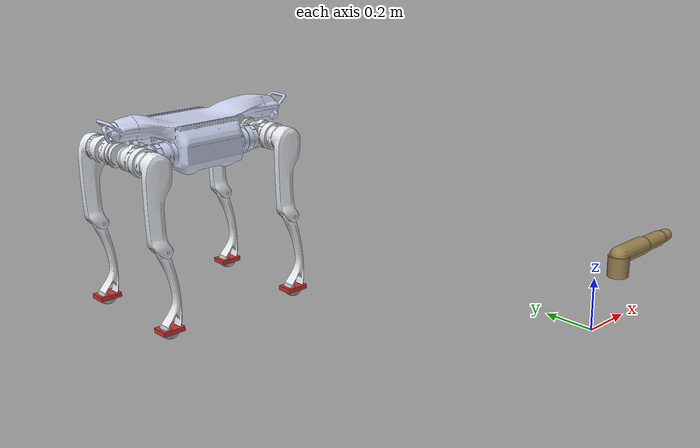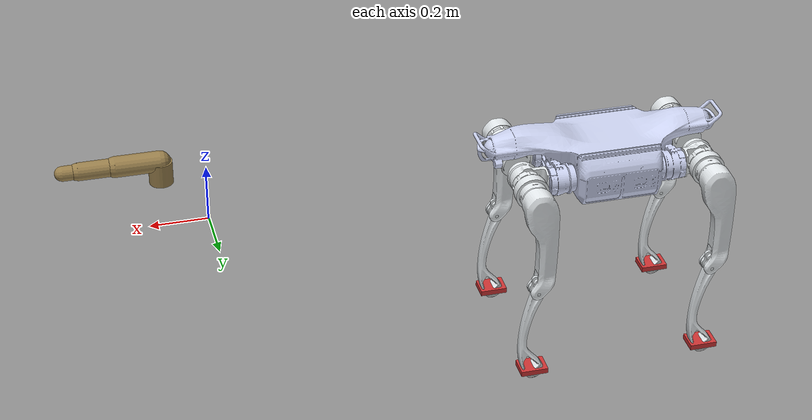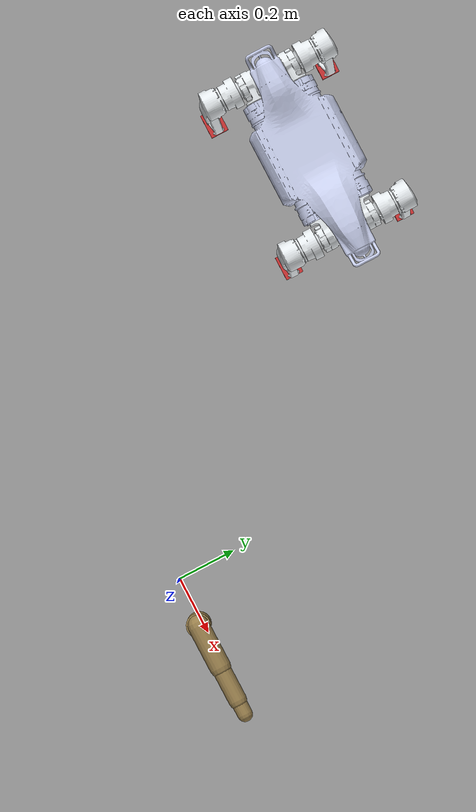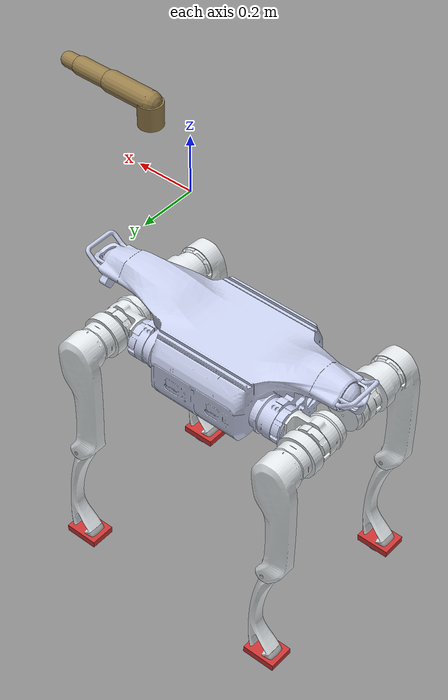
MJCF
<mujoco model="a2_arm">
  <include file="a2.xml"/>

  <!-- 6-DOF robotic arm mounted on base_link body -->
  <worldbody>
    <body name="arm_base" pos="0.15 0 0.12">
      <joint name="arm_base_fixed" type="fixed"/>

      <body name="arm_link1" pos="0 0 0.05">
        <joint name="arm_joint1" type="hinge" axis="0 0 1"
               range="-3.14 3.14" damping="2.0"/>
        <geom name="arm_link1_geom" type="cylinder"
              size="0.04" fromto="0 0 0 0 0 0.08"
              rgba="0.6 0.5 0.3 1"/>

        <body name="arm_link2" pos="0 0 0.08">
          <joint name="arm_joint2" type="hinge" axis="0 1 0"
                 range="-2.0 2.0" damping="2.0"/>
          <geom name="arm_link2_geom" type="capsule"
                size="0.035" fromto="0 0 0 0.15 0 0"
                rgba="0.6 0.5 0.3 1"/>

          <body name="arm_link3" pos="0.15 0 0">
            <joint name="arm_joint3" type="hinge" axis="0 1 0"
                   range="-2.5 2.5" damping="1.5"/>
            <geom name="arm_link3_geom" type="capsule"
                  size="0.03" fromto="0 0 0 0.12 0 0"
                  rgba="0.6 0.5 0.3 1"/>

            <body name="arm_link4" pos="0.12 0 0">
              <joint name="arm_joint4" type="hinge" axis="1 0 0"
                     range="-3.14 3.14" damping="1.0"/>
              <geom name="arm_link4_geom" type="capsule"
                    size="0.025" fromto="0 0 0 0.05 0 0"
                    rgba="0.6 0.5 0.3 1"/>
            </body>
          </body>
        </body>
      </body>
    </body>
  </worldbody>

  <actuator>
    <motor name="arm_joint1_motor" joint="arm_joint1" gear="1"
           ctrllimited="true" ctrlrange="-50 50"/>
    <motor name="arm_joint2_motor" joint="arm_joint2" gear="1"
           ctrllimited="true" ctrlrange="-80 80"/>
    <motor name="arm_joint3_motor" joint="arm_joint3" gear="1"
           ctrllimited="true" ctrlrange="-60 60"/>
    <motor name="arm_joint4_motor" joint="arm_joint4" gear="1"
           ctrllimited="true" ctrlrange="-30 30"/>
  </actuator>
</mujoco>

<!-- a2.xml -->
<mujoco model="a2">
  <compiler angle="radian" meshdir="../assets/a2_urdf/meshes/"/>

  <option gravity="0 0 -9.81" timestep="0.001"
          integrator="implicitfast" solver="Newton"
          iterations="100" tolerance="1e-8"/>

  <default>
    <default class="hip_joint">
      <joint damping="0.2" armature="0.03" frictionloss="1.0" />
    </default>
    <default class="thigh_joint">
      <joint damping="0.2" armature="0.03" frictionloss="1.0" />
    </default>
    <default class="calf_joint">
      <joint damping="1.0" armature="0.03" frictionloss="3.0" />
    </default>
    <default class="collision">
      <geom group="3" priority="1" condim="6"/>
    </default>
    <default class="foot">
      <geom group="3" priority="1" condim="6"/>
    </default>
    <default class="magnet">
      <geom friction="0.5 0.02 0.001"
            contype="1" conaffinity="1"
            rgba="0.8 0.2 0.2 1"/>
    </default>
  </default>

  <asset>
    <mesh name="base_link" file="base_link.STL"/>
    <mesh name="left_front_Link1" file="left_front_Link1.STL"/>
    <mesh name="left_front_Link2" file="left_front_Link2.STL"/>
    <mesh name="left_front_Link3" file="left_front_Link3.STL"/>
    <mesh name="left_front_Link4" file="left_front_Link4.STL"/>
    <mesh name="left_hind_Link1" file="left_hind_Link1.STL"/>
    <mesh name="left_hind_Link2" file="left_hind_Link2.STL"/>
    <mesh name="left_hind_Link3" file="left_hind_Link3.STL"/>
    <mesh name="left_hind_Link4" file="left_hind_Link4.STL"/>
    <mesh name="right_front_Link1" file="right_front_Link1.STL"/>
    <mesh name="right_front_Link2" file="right_front_Link2.STL"/>
    <mesh name="right_front_Link3" file="right_front_Link3.STL"/>
    <mesh name="right_front_Link4" file="right_front_Link4.STL"/>
    <mesh name="right_hind_Link1" file="right_hind_Link1.STL"/>
    <mesh name="right_hind_Link2" file="right_hind_Link2.STL"/>
    <mesh name="right_hind_Link3" file="right_hind_Link3.STL"/>
    <mesh name="right_hind_Link4" file="right_hind_Link4.STL"/>
  </asset>

  <worldbody>
    <body name="base_link" pos="-1 1 0.7">
      <inertial pos="0.00698259 -0.000712858 0.0128895"
                quat="-0.00152907 0.699583 -0.00252986 0.714546"
                mass="19.651" diaginertia="0.472398 0.407723 0.141627"/>
      <freejoint name="floating_base_joint"/>
      <site name="imu" pos="-0.0 0 0.0" />
      <geom type="mesh" contype="0" conaffinity="0" group="1" density="0"
            rgba="0.792157 0.819608 0.933333 1" mesh="base_link"/>
      <geom class="collision" size="0.12 0.14 0.085" pos="0 0 0.007" type="box"
            rgba="0.792157 0.819608 0.933333 1"/>
      <geom class="collision" size="0.04 0.025 0.01" pos="0.25 0 0.119" type="box"
            rgba="0.792157 0.819608 0.933333 1"/>
      <geom class="collision" size="0.025 0.015 0.008" pos="-0.22 0 0.119"
            quat="0.999888 0 -0.0149994 0" type="box"
            rgba="0.792157 0.819608 0.933333 1"/>
      <geom class="collision" size="0.03 0.05 0.005" pos="0.365 0 0.1"
            quat="0.939373 0 -0.342898 0" type="box"
            rgba="0.792157 0.819608 0.933333 1"/>
      <geom class="collision" size="0.0225 0.05 0.005" pos="-0.31 0 0.112"
            quat="0.939373 0 0.342898 0" type="box"
            rgba="0.792157 0.819608 0.933333 1"/>

      <!-- ===== FRONT LEFT LEG ===== -->
      <body name="FL_hip" pos="0.25944 0.075113 0">
        <inertial pos="-0.002408 -0.01622 0.000239"
                  quat="0.66751 0.421649 0.565191 0.239168"
                  mass="1.62" diaginertia="0.0016644 0.00161602 0.00145995"/>
        <joint name="FL_hip_joint" pos="0 0 0" axis="1 0 0"
               range="-1.01 1.01" class="hip_joint"/>
        <geom type="mesh" contype="0" conaffinity="0" group="1" density="0"
              rgba="0.898039 0.917647 0.929412 1" mesh="left_front_Link1"/>

        <body name="FL_thigh" pos="0 0.12779 0">
          <inertial pos="-0.003268 -0.03111 -0.053896"
                    quat="0.993045 0.11348 0.0231928 0.0211279"
                    mass="3.079" diaginertia="0.0293395 0.0280448 0.00383794"/>
          <joint name="FL_thigh_joint" pos="0 0 0" axis="0 1 0"
                 range="-2.34 3.15" class="thigh_joint"/>
          <geom type="mesh" contype="0" conaffinity="0" group="1" density="0"
                rgba="0.898039 0.917647 0.929412 1" mesh="left_front_Link2"/>
          <geom class="collision" size="0.048 0.06" pos="0 -0.04 0"
                quat="0.707035 0.707179 0 0" type="cylinder"
                rgba="0.898039 0.917647 0.929412 1"/>
          <geom class="collision" size="0.0275 0.018 0.085" pos="-0.025 0 -0.09"
                quat="0.999988 0 0.00499998 0" type="box"
                rgba="0.898039 0.917647 0.929412 1"/>
          <geom class="collision" size="0.0085 0.025 0.025" pos="-0.022 0 -0.27"
                quat="0.930508 0 -0.366273 0" type="box"
                rgba="0.898039 0.917647 0.929412 1"/>

          <body name="FL_calf" pos="0 0 -0.275">
            <inertial pos="0.0102138 -1.99312e-05 -0.136496"
                      quat="0.706884 -0.0119077 -0.0120568 0.707127"
                      mass="0.407" diaginertia="0.00511119 0.00502314 0.000177746"/>
            <joint name="FL_calf_joint" pos="0 0 0" axis="0 1 0"
                   range="-2.77 -0.54" class="calf_joint"/>
            <geom type="mesh" contype="0" conaffinity="0" group="1" density="0"
                  rgba="0.898039 0.917647 0.929412 1" mesh="left_front_Link3"/>
            <geom class="collision" size="0.012 0.015 0.05" pos="0.018 0 -0.08"
                  quat="0.992809 0 -0.119712 0" type="box"
                  rgba="0.898039 0.917647 0.929412 1"/>
            <geom class="collision" size="0.011 0.015 0.04" pos="0.033 0 -0.17"
                  quat="0.999888 0 -0.0149994 0" type="box"
                  rgba="0.898039 0.917647 0.929412 1"/>
            <geom class="collision" size="0.01 0.018 0.03" pos="0.029 0 -0.236"
                  quat="0.995004 0 0.0998334 0" type="box"
                  rgba="0.898039 0.917647 0.929412 1"/>
            <geom class="collision" size="0.005 0.018 0.03" pos="0.008 0 -0.23"
                  quat="0.942755 0 0.333487 0" type="box"
                  rgba="0.898039 0.917647 0.929412 1"/>
            <geom pos="0 0 -0.275" quat="1 0 0 0" type="mesh"
                  contype="0" conaffinity="0" group="1" density="0"
                  rgba="0.698039 0.698039 0.698039 1" mesh="left_front_Link4"/>
            <geom size="0.032" pos="0 0 -0.275"
                  rgba="0.698039 0.698039 0.698039 1" class="foot"/>

            <!-- Magnet foot at foot location -->
            <body name="FL_magnet_body" pos="0 0 -0.275">
              <geom name="FL_magnet_geom" class="magnet"
                    type="box" size="0.04 0.03 0.008" mass="0.3"/>
              <site name="FL_magnet_site" pos="0 0 -0.008" size="0.008"
                    rgba="1 0 0 1"/>
            </body>
          </body>
        </body>
      </body>

      <!-- ===== REAR LEFT LEG ===== -->
      <body name="RL_hip" pos="-0.25944 0.075113 0">
        <inertial pos="0.00327 -0.01622 -9.7e-05"
                  quat="0.358494 0.383537 0.580824 0.622113"
                  mass="1.62" diaginertia="0.00167848 0.00163116 0.00141504"/>
        <joint name="RL_hip_joint" pos="0 0 0" axis="1 0 0"
               range="-1.01 1.01" class="hip_joint"/>
        <geom type="mesh" contype="0" conaffinity="0" group="1" density="0"
              rgba="0.898039 0.917647 0.929412 1" mesh="left_hind_Link1"/>

        <body name="RL_thigh" pos="0 0.12779 0">
          <inertial pos="-0.003268 -0.03111 -0.053896"
                    quat="0.993045 0.11348 0.0231928 0.0211279"
                    mass="3.079" diaginertia="0.0293395 0.0280448 0.00383794"/>
          <joint name="RL_thigh_joint" pos="0 0 0" axis="0 1 0"
                 range="-1.56 3.94" class="thigh_joint"/>
          <geom type="mesh" contype="0" conaffinity="0" group="1" density="0"
                rgba="0.898039 0.917647 0.929412 1" mesh="left_hind_Link2"/>
          <geom class="collision" size="0.048 0.06" pos="0 -0.04 0"
                quat="0.707035 0.707179 0 0" type="cylinder"
                rgba="0.898039 0.917647 0.929412 1"/>
          <geom class="collision" size="0.0275 0.018 0.085" pos="-0.025 0 -0.09"
                quat="0.999988 0 0.00499998 0" type="box"
                rgba="0.898039 0.917647 0.929412 1"/>
          <geom class="collision" size="0.0085 0.025 0.025" pos="-0.022 0 -0.27"
                quat="0.930508 0 -0.366273 0" type="box"
                rgba="0.898039 0.917647 0.929412 1"/>

          <body name="RL_calf" pos="0 0 -0.275">
            <inertial pos="0.0102138 -1.99312e-05 -0.136496"
                      quat="0.706884 -0.0119077 -0.0120568 0.707127"
                      mass="0.407" diaginertia="0.00511119 0.00502314 0.000177746"/>
            <joint name="RL_calf_joint" pos="0 0 0" axis="0 1 0"
                   range="-2.77 -0.54" class="calf_joint"/>
            <geom type="mesh" contype="0" conaffinity="0" group="1" density="0"
                  rgba="0.898039 0.917647 0.929412 1" mesh="left_hind_Link3"/>
            <geom class="collision" size="0.012 0.015 0.05" pos="0.018 0 -0.08"
                  quat="0.992809 0 -0.119712 0" type="box"
                  rgba="0.898039 0.917647 0.929412 1"/>
            <geom class="collision" size="0.011 0.015 0.04" pos="0.033 0 -0.17"
                  quat="0.999888 0 -0.0149994 0" type="box"
                  rgba="0.898039 0.917647 0.929412 1"/>
            <geom class="collision" size="0.01 0.018 0.03" pos="0.029 0 -0.236"
                  quat="0.995004 0 0.0998334 0" type="box"
                  rgba="0.898039 0.917647 0.929412 1"/>
            <geom class="collision" size="0.005 0.018 0.03" pos="0.008 0 -0.23"
                  quat="0.942755 0 0.333487 0" type="box"
                  rgba="0.898039 0.917647 0.929412 1"/>
            <geom pos="0 0 -0.275" quat="1 0 0 0" type="mesh"
                  contype="0" conaffinity="0" group="1" density="0"
                  rgba="0.698039 0.698039 0.698039 1" mesh="left_hind_Link4"/>
            <geom size="0.032" pos="0 0 -0.275"
                  rgba="0.698039 0.698039 0.698039 1" class="foot"/>

            <body name="RL_magnet_body" pos="0 0 -0.275">
              <geom name="RL_magnet_geom" class="magnet"
                    type="box" size="0.04 0.03 0.008" mass="0.3"/>
              <site name="RL_magnet_site" pos="0 0 -0.008" size="0.008"
                    rgba="1 0 0 1"/>
            </body>
          </body>
        </body>
      </body>

      <!-- ===== FRONT RIGHT LEG ===== -->
      <body name="FR_hip" pos="0.25944 -0.075113 0">
        <inertial pos="-0.002465 0.01622 0.000318"
                  quat="0.244263 0.553086 0.449878 0.657299"
                  mass="1.62" diaginertia="0.0016672 0.00160755 0.00146457"/>
        <joint name="FR_hip_joint" pos="0 0 0" axis="1 0 0"
               range="-1.01 1.01" class="hip_joint"/>
        <geom type="mesh" contype="0" conaffinity="0" group="1" density="0"
              rgba="0.898039 0.917647 0.929412 1" mesh="right_front_Link1"/>

        <body name="FR_thigh" pos="0 -0.12779 0">
          <inertial pos="-0.003256 0.031125 -0.053921"
                    quat="0.993054 -0.113587 0.0234158 -0.0198545"
                    mass="3.077" diaginertia="0.029323 0.028038 0.00383842"/>
          <joint name="FR_thigh_joint" pos="0 0 0" axis="0 1 0"
                 range="-2.34 3.15" class="thigh_joint"/>
          <geom type="mesh" contype="0" conaffinity="0" group="1" density="0"
                rgba="0.898039 0.917647 0.929412 1" mesh="right_front_Link2"/>
          <geom class="collision" size="0.048 0.06" pos="0 0.04 0"
                quat="0.707035 0.707179 0 0" type="cylinder"
                rgba="0.898039 0.917647 0.929412 1"/>
          <geom class="collision" size="0.0275 0.018 0.085" pos="-0.025 0 -0.09"
                quat="0.999988 0 0.00499998 0" type="box"
                rgba="0.898039 0.917647 0.929412 1"/>
          <geom class="collision" size="0.0085 0.025 0.025" pos="-0.022 0 -0.27"
                quat="0.930508 0 -0.366273 0" type="box"
                rgba="0.898039 0.917647 0.929412 1"/>

          <body name="FR_calf" pos="0 0 -0.275">
            <inertial pos="0.0102138 1.55479e-05 -0.136496"
                      quat="0.707151 -0.0120743 -0.0118903 0.706859"
                      mass="0.407" diaginertia="0.00511119 0.00502314 0.000177746"/>
            <joint name="FR_calf_joint" pos="0 0 0" axis="0 1 0"
                   range="-2.77 -0.54" class="calf_joint"/>
            <geom type="mesh" contype="0" conaffinity="0" group="1" density="0"
                  rgba="0.898039 0.917647 0.929412 1" mesh="right_front_Link3"/>
            <geom class="collision" size="0.012 0.015 0.05" pos="0.018 0 -0.08"
                  quat="0.992809 0 -0.119712 0" type="box"
                  rgba="0.898039 0.917647 0.929412 1"/>
            <geom class="collision" size="0.011 0.015 0.04" pos="0.033 0 -0.17"
                  quat="0.999888 0 -0.0149994 0" type="box"
                  rgba="0.898039 0.917647 0.929412 1"/>
            <geom class="collision" size="0.01 0.018 0.03" pos="0.029 0 -0.236"
                  quat="0.995004 0 0.0998334 0" type="box"
                  rgba="0.898039 0.917647 0.929412 1"/>
            <geom class="collision" size="0.005 0.018 0.03" pos="0.008 0 -0.23"
                  quat="0.942755 0 0.333487 0" type="box"
                  rgba="0.898039 0.917647 0.929412 1"/>
            <geom pos="0 0 -0.275" quat="1 0 0 0" type="mesh"
                  contype="0" conaffinity="0" group="1" density="0"
                  rgba="0.698039 0.698039 0.698039 1" mesh="right_front_Link4"/>
            <geom size="0.032" pos="0 0 -0.275"
                  rgba="0.698039 0.698039 0.698039 1" class="foot"/>

            <body name="FR_magnet_body" pos="0 0 -0.275">
              <geom name="FR_magnet_geom" class="magnet"
                    type="box" size="0.04 0.03 0.008" mass="0.3"/>
              <site name="FR_magnet_site" pos="0 0 -0.008" size="0.008"
                    rgba="1 0 0 1"/>
            </body>
          </body>
        </body>
      </body>

      <!-- ===== REAR RIGHT LEG ===== -->
      <body name="RR_hip" pos="-0.25944 -0.075113 0">
        <inertial pos="0.00327 0.01622 -3.7e-05"
                  quat="0.616206 0.585144 0.36648 0.378931"
                  mass="1.62" diaginertia="0.00167769 0.00163476 0.00141225"/>
        <joint name="RR_hip_joint" pos="0 0 0" axis="1 0 0"
               range="-1.01 1.01" class="hip_joint"/>
        <geom type="mesh" contype="0" conaffinity="0" group="1" density="0"
              rgba="0.898039 0.917647 0.929412 1" mesh="right_hind_Link1"/>

        <body name="RR_thigh" pos="0 -0.12779 0">
          <inertial pos="-0.003256 0.031125 -0.053921"
                    quat="0.993054 -0.113587 0.0234158 -0.0198545"
                    mass="3.077" diaginertia="0.029323 0.028038 0.00383842"/>
          <joint name="RR_thigh_joint" pos="0 0 0" axis="0 1 0"
                 range="-1.56 3.94" class="thigh_joint"/>
          <geom type="mesh" contype="0" conaffinity="0" group="1" density="0"
                rgba="0.898039 0.917647 0.929412 1" mesh="right_hind_Link2"/>
          <geom class="collision" size="0.048 0.06" pos="0 0.04 0"
                quat="0.707035 0.707179 0 0" type="cylinder"
                rgba="0.898039 0.917647 0.929412 1"/>
          <geom class="collision" size="0.0275 0.018 0.085" pos="-0.025 0 -0.09"
                quat="0.999988 0 0.00499998 0" type="box"
                rgba="0.898039 0.917647 0.929412 1"/>
          <geom class="collision" size="0.0085 0.025 0.025" pos="-0.022 0 -0.27"
                quat="0.930508 0 -0.366273 0" type="box"
                rgba="0.898039 0.917647 0.929412 1"/>

          <body name="RR_calf" pos="0 0 -0.275">
            <inertial pos="0.0102138 1.55479e-05 -0.136496"
                      quat="0.707151 -0.0120743 -0.0118903 0.706859"
                      mass="0.407" diaginertia="0.00511119 0.00502314 0.000177746"/>
            <joint name="RR_calf_joint" pos="0 0 0" axis="0 1 0"
                   range="-2.77 -0.54" class="calf_joint"/>
            <geom type="mesh" contype="0" conaffinity="0" group="1" density="0"
                  rgba="0.898039 0.917647 0.929412 1" mesh="right_hind_Link3"/>
            <geom class="collision" size="0.012 0.015 0.05" pos="0.018 0 -0.08"
                  quat="0.992809 0 -0.119712 0" type="box"
                  rgba="0.898039 0.917647 0.929412 1"/>
            <geom class="collision" size="0.011 0.015 0.04" pos="0.033 0 -0.17"
                  quat="0.999888 0 -0.0149994 0" type="box"
                  rgba="0.898039 0.917647 0.929412 1"/>
            <geom class="collision" size="0.01 0.018 0.03" pos="0.029 0 -0.236"
                  quat="0.995004 0 0.0998334 0" type="box"
                  rgba="0.898039 0.917647 0.929412 1"/>
            <geom class="collision" size="0.005 0.018 0.03" pos="0.008 0 -0.23"
                  quat="0.942755 0 0.333487 0" type="box"
                  rgba="0.898039 0.917647 0.929412 1"/>
            <geom pos="0 0 -0.275" quat="1 0 0 0" type="mesh"
                  contype="0" conaffinity="0" group="1" density="0"
                  rgba="0.698039 0.698039 0.698039 1" mesh="right_hind_Link4"/>
            <geom size="0.032" pos="0 0 -0.275"
                  rgba="0.698039 0.698039 0.698039 1" class="foot"/>

            <body name="RR_magnet_body" pos="0 0 -0.275">
              <geom name="RR_magnet_geom" class="magnet"
                    type="box" size="0.04 0.03 0.008" mass="0.3"/>
              <site name="RR_magnet_site" pos="0 0 -0.008" size="0.008"
                    rgba="1 0 0 1"/>
            </body>
          </body>
        </body>
      </body>

    </body>
  </worldbody>

  <actuator>
    <!-- Leg joint motors (12) — torque in N·m matched to real A2 specs -->
    <motor name="FL_hip"   joint="FL_hip_joint"   gear="1"
           ctrllimited="true" ctrlrange="-120 120"/>
    <motor name="FL_thigh" joint="FL_thigh_joint" gear="1"
           ctrllimited="true" ctrlrange="-120 120"/>
    <motor name="FL_calf"  joint="FL_calf_joint"  gear="1"
           ctrllimited="true" ctrlrange="-180 180"/>

    <motor name="FR_hip"   joint="FR_hip_joint"   gear="1"
           ctrllimited="true" ctrlrange="-120 120"/>
    <motor name="FR_thigh" joint="FR_thigh_joint" gear="1"
           ctrllimited="true" ctrlrange="-120 120"/>
    <motor name="FR_calf"  joint="FR_calf_joint"  gear="1"
           ctrllimited="true" ctrlrange="-180 180"/>

    <motor name="RL_hip"   joint="RL_hip_joint"   gear="1"
           ctrllimited="true" ctrlrange="-120 120"/>
    <motor name="RL_thigh" joint="RL_thigh_joint" gear="1"
           ctrllimited="true" ctrlrange="-120 120"/>
    <motor name="RL_calf"  joint="RL_calf_joint"  gear="1"
           ctrllimited="true" ctrlrange="-180 180"/>

    <motor name="RR_hip"   joint="RR_hip_joint"   gear="1"
           ctrllimited="true" ctrlrange="-120 120"/>
    <motor name="RR_thigh" joint="RR_thigh_joint" gear="1"
           ctrllimited="true" ctrlrange="-120 120"/>
    <motor name="RR_calf"  joint="RR_calf_joint"  gear="1"
           ctrllimited="true" ctrlrange="-180 180"/>

    <!-- Magnetic adhesion actuators (4) -->
    <adhesion name="FL_adhesion" body="FL_magnet_body"
              gain="1000" ctrlrange="0 1"/>
    <adhesion name="FR_adhesion" body="FR_magnet_body"
              gain="1000" ctrlrange="0 1"/>
    <adhesion name="RL_adhesion" body="RL_magnet_body"
              gain="1000" ctrlrange="0 1"/>
    <adhesion name="RR_adhesion" body="RR_magnet_body"
              gain="1000" ctrlrange="0 1"/>
  </actuator>

  <sensor>
    <!-- Joint position sensors -->
    <jointpos name="FL_hip_pos" joint="FL_hip_joint"/>
    <jointpos name="FL_thigh_pos" joint="FL_thigh_joint"/>
    <jointpos name="FL_calf_pos" joint="FL_calf_joint"/>
    <jointpos name="FR_hip_pos" joint="FR_hip_joint"/>
    <jointpos name="FR_thigh_pos" joint="FR_thigh_joint"/>
    <jointpos name="FR_calf_pos" joint="FR_calf_joint"/>
    <jointpos name="RL_hip_pos" joint="RL_hip_joint"/>
    <jointpos name="RL_thigh_pos" joint="RL_thigh_joint"/>
    <jointpos name="RL_calf_pos" joint="RL_calf_joint"/>
    <jointpos name="RR_hip_pos" joint="RR_hip_joint"/>
    <jointpos name="RR_thigh_pos" joint="RR_thigh_joint"/>
    <jointpos name="RR_calf_pos" joint="RR_calf_joint"/>

    <!-- Joint velocity sensors -->
    <jointvel name="FL_hip_vel" joint="FL_hip_joint"/>
    <jointvel name="FL_thigh_vel" joint="FL_thigh_joint"/>
    <jointvel name="FL_calf_vel" joint="FL_calf_joint"/>
    <jointvel name="FR_hip_vel" joint="FR_hip_joint"/>
    <jointvel name="FR_thigh_vel" joint="FR_thigh_joint"/>
    <jointvel name="FR_calf_vel" joint="FR_calf_joint"/>
    <jointvel name="RL_hip_vel" joint="RL_hip_joint"/>
    <jointvel name="RL_thigh_vel" joint="RL_thigh_joint"/>
    <jointvel name="RL_calf_vel" joint="RL_calf_joint"/>
    <jointvel name="RR_hip_vel" joint="RR_hip_joint"/>
    <jointvel name="RR_thigh_vel" joint="RR_thigh_joint"/>
    <jointvel name="RR_calf_vel" joint="RR_calf_joint"/>

    <!-- IMU -->
    <framequat name="imu_quat" objtype="site" objname="imu"/>
    <gyro name="imu_gyro" site="imu"/>
    <accelerometer name="imu_acc" site="imu"/>
    <framepos name="frame_pos" objtype="site" objname="imu"/>
    <framelinvel name="frame_vel" objtype="site" objname="imu"/>

    <!-- Foot contact force sensors -->
    <force name="FL_foot_force" site="FL_magnet_site"/>
    <force name="FR_foot_force" site="FR_magnet_site"/>
    <force name="RL_foot_force" site="RL_magnet_site"/>
    <force name="RR_foot_force" site="RR_magnet_site"/>
  </sensor>
</mujoco>
